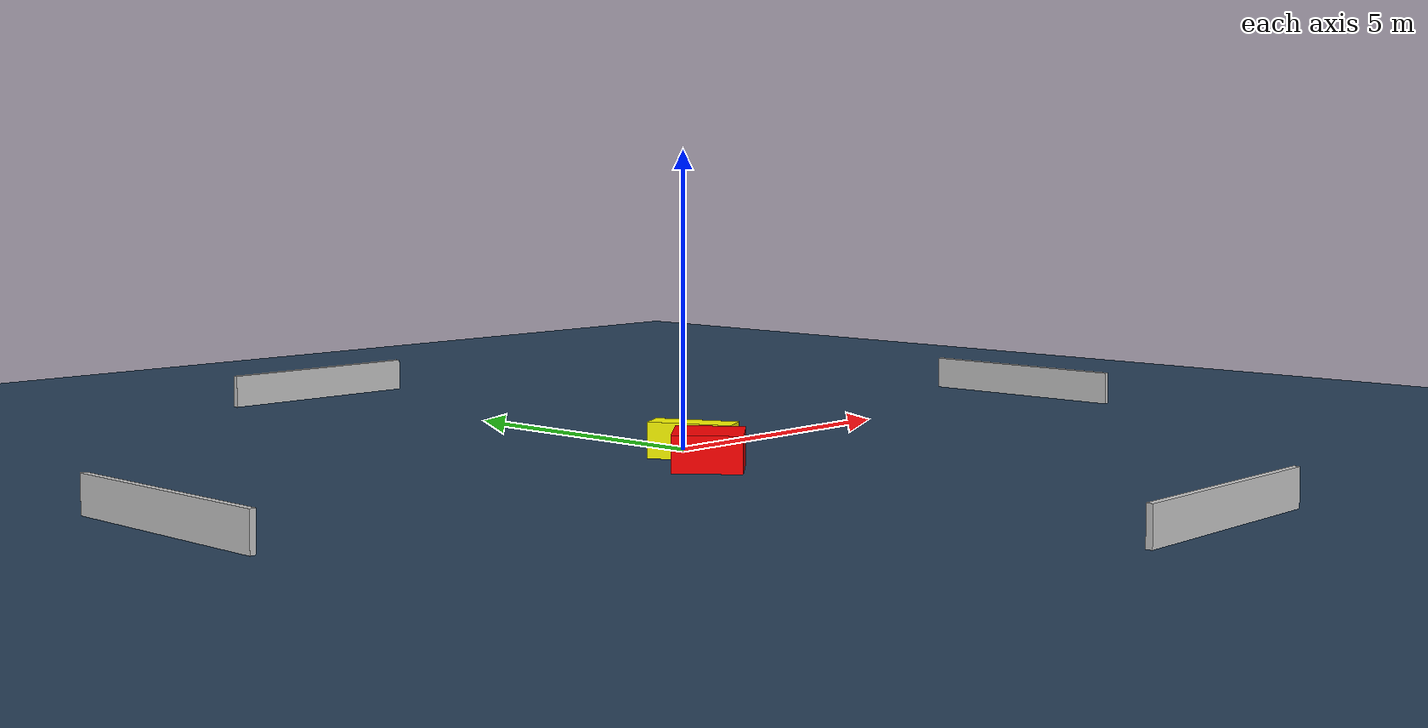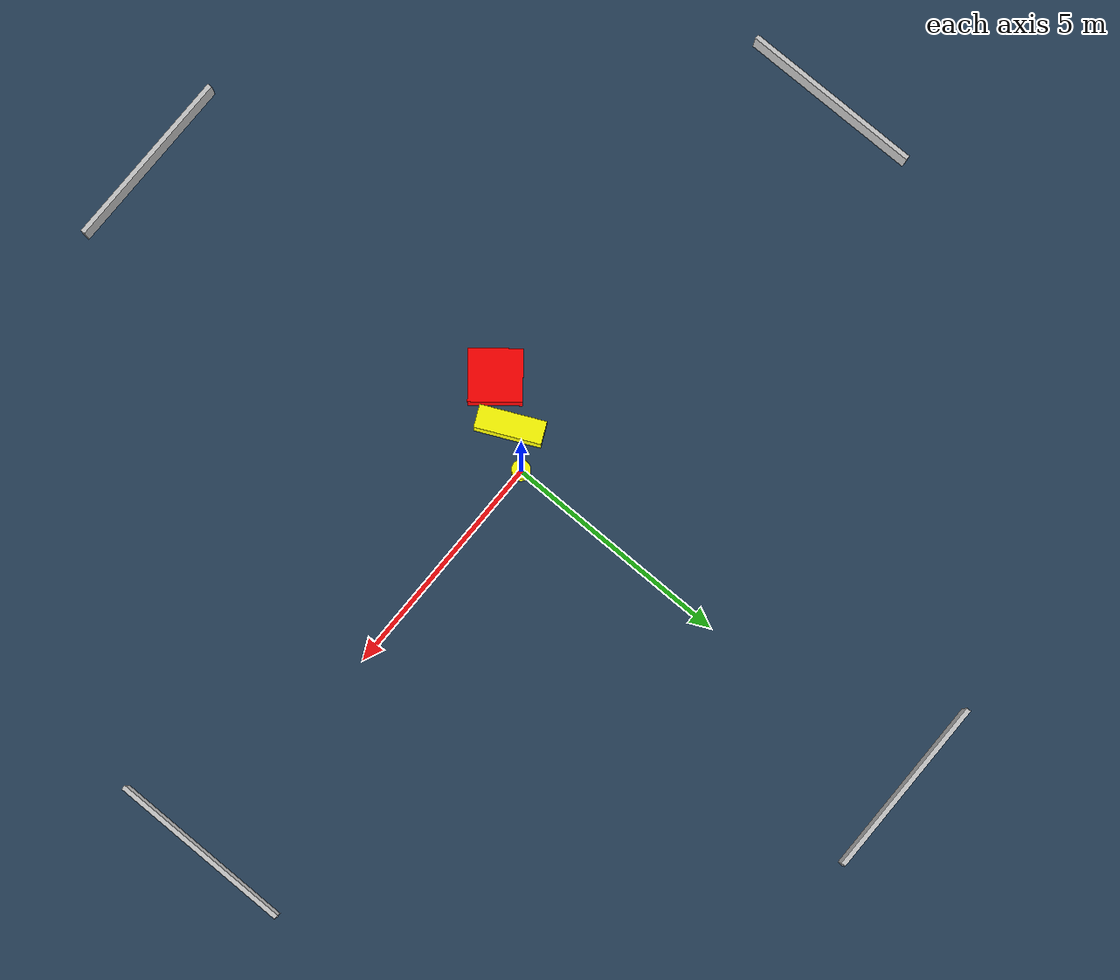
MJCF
<?xml version="1.0" ?>
<mujoco model="generated_environment">
  <option timestep="0.01" integrator="RK4" cone="elliptic"/>
  <default>
    <geom density="1"/>
  </default>
  <asset>
    <texture builtin="gradient" height="3072" name="skybox" rgb1="0.3 0.5 0.7" rgb2="0 0 0" type="skybox" width="512"/>
    <texture builtin="checker" height="300" name="groundplane" rgb1="0.2 0.3 0.4" rgb2="0.1 0.2 0.3" type="2d" width="300"/>
    <material name="groundplane" reflectance="0.2" texrepeat="5 5" texture="groundplane"/>
  </asset>
  <worldbody>
    <light dir="0 0 -1" directional="true" pos="0 0 1.5"/>
    <geom condim="3" friction="0.5 0.005 0.001" material="groundplane" name="floor" pos="0 0 0" size="0 0 0.05" type="plane"/>
    <body name="walls">
      <geom name="wall_1" condim="4" pos="-10.0 0.0 0.3" rgba="0.800000011920929 0.800000011920929 0.800000011920929 1.0" size="0.05 2.0 0.3" type="box"/>
      <geom name="wall_2" condim="4" pos="10.0 0.0 0.3" rgba="0.800000011920929 0.800000011920929 0.800000011920929 1.0" size="0.05 2.0 0.3" type="box"/>
      <geom name="wall_3" condim="4" pos="0.0 -10.0 0.3" rgba="0.800000011920929 0.800000011920929 0.800000011920929 1.0" size="2.0 0.05 0.3" type="box"/>
      <geom name="wall_4" condim="4" pos="0.0 10.0 0.3" rgba="0.800000011920929 0.800000011920929 0.800000011920929 1.0" size="2.0 0.05 0.3" type="box"/>
    </body>
    <body name="robot">
      <joint name="joint_x" type="slide" pos="0 0 0" axis="1 0 0"/>
      <joint name="joint_y" type="slide" pos="0 0 0" axis="0 1 0"/>
      <geom name="robot" type="cylinder" pos="0.0 0.0 0.2" size="0.2 0.2 0.0" mass="5.0" friction="1.0 0.005 0.0001" condim="4" rgba="1.0 1.0 0.0 1.0"/>
    </body>
    <body name="obstacle_1_movable">
      <geom name="obstacle_1_movable" condim="4" pos="-0.5510097910034399 -0.744369058670966 0.3" euler="0 0 25.064732541971175" friction="0.0 0.005 0.001" rgba="1.0 1.0 0.0 1.0" size="0.2438713280905358 0.7075958181613904 0.3" type="box" mass="0.1"/>
      <joint type="free"/>
    </body>
    <body name="obstacle_2_static">
      <geom name="obstacle_2_static" condim="4" pos="-1.130982251478279 -1.6249610942187271 0.3" euler="0 0 129.4153372356058" friction="0.0 0.005 0.001" rgba="1.0 0.0 0.0 1.0" size="0.5657256490241338 0.5494067001535774 0.3" type="box"/>
    </body>
  </worldbody>
  <actuator>
    <motor name="actuator_x" joint="joint_x" gear="1" ctrlrange="-1 1"/>
    <motor name="actuator_y" joint="joint_y" gear="1" ctrlrange="-1 1"/>
  </actuator>
</mujoco>
